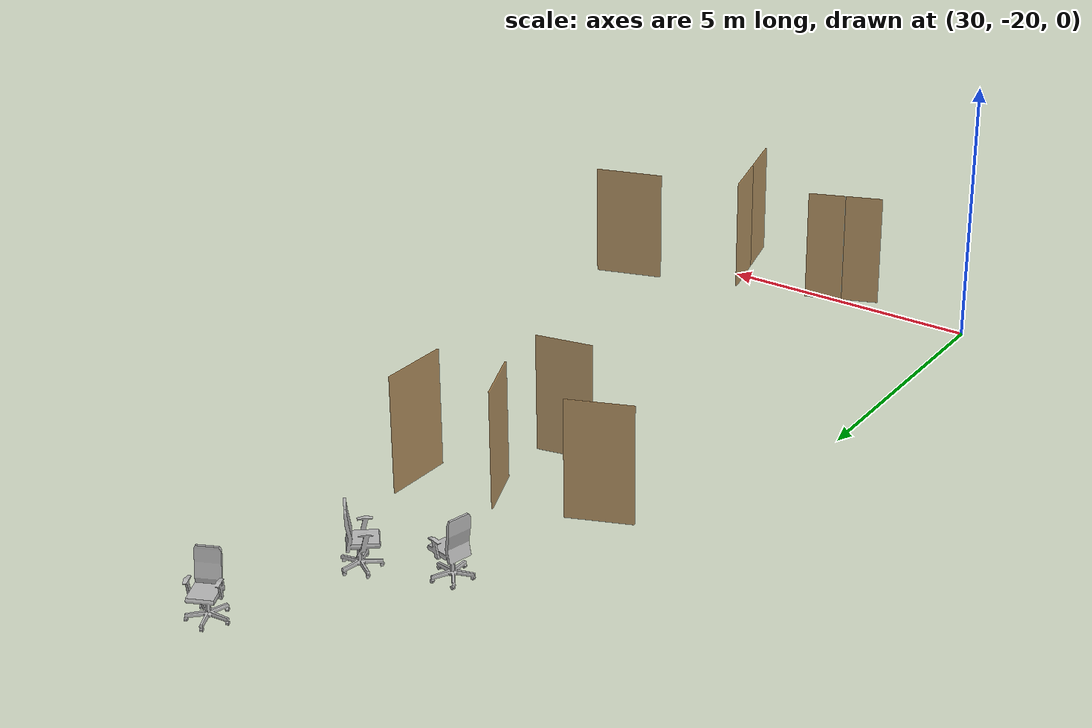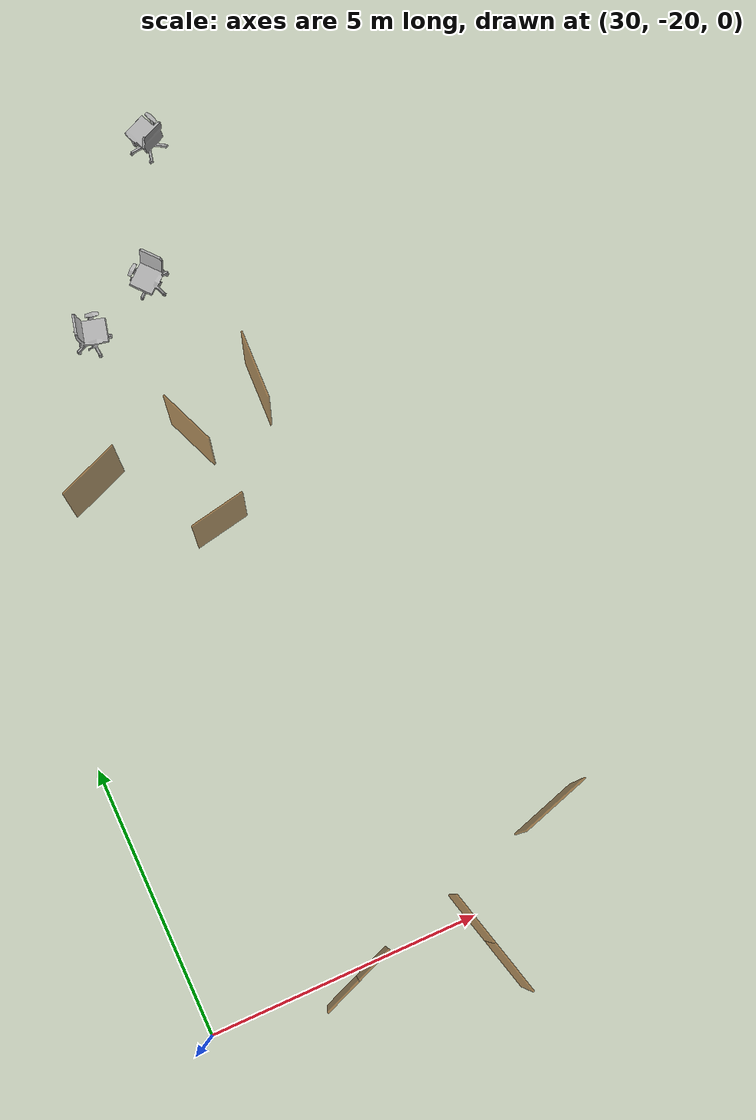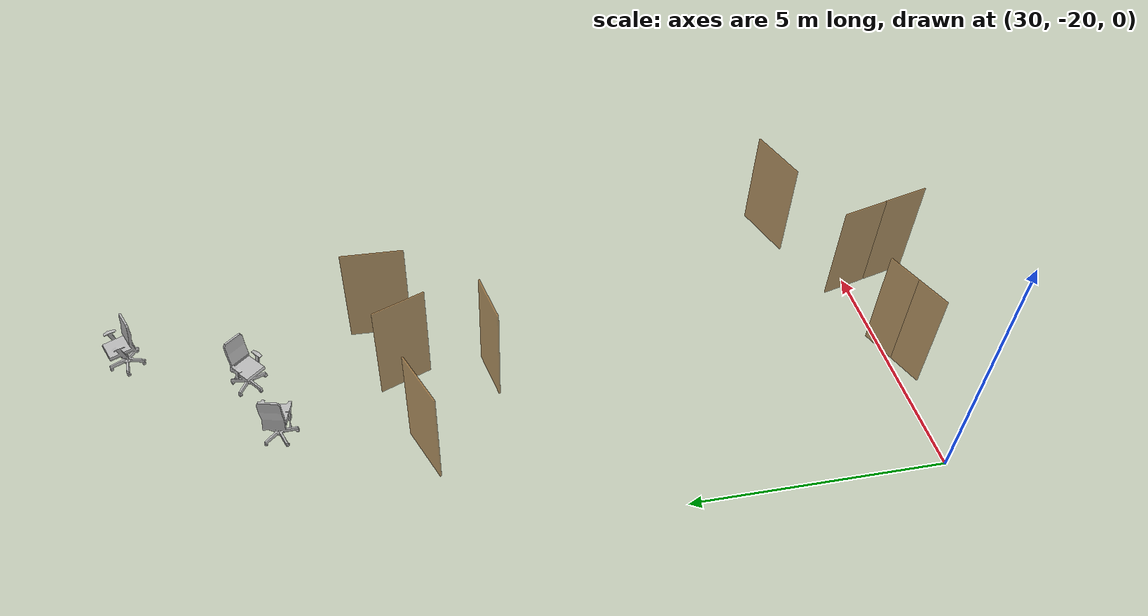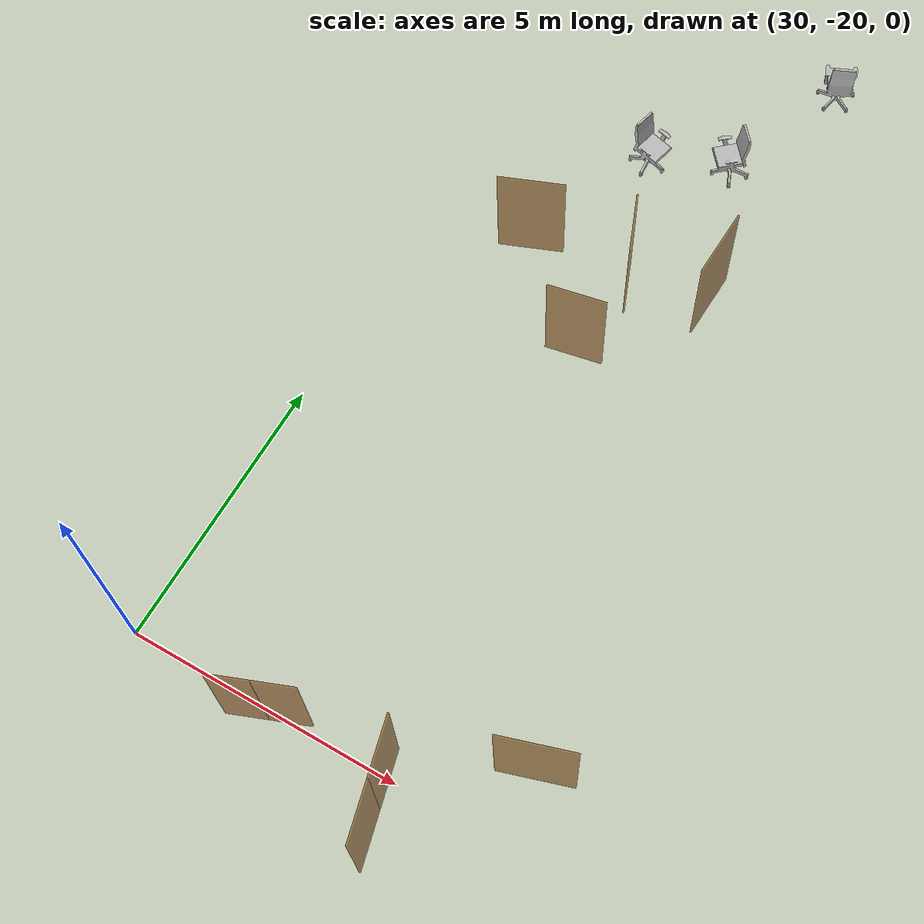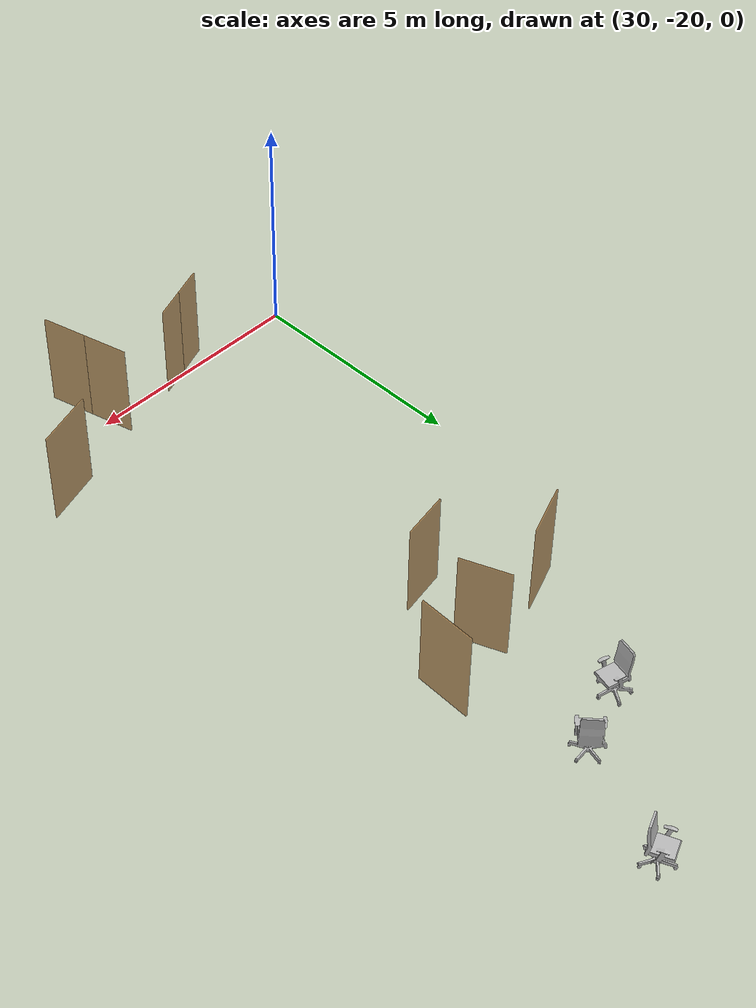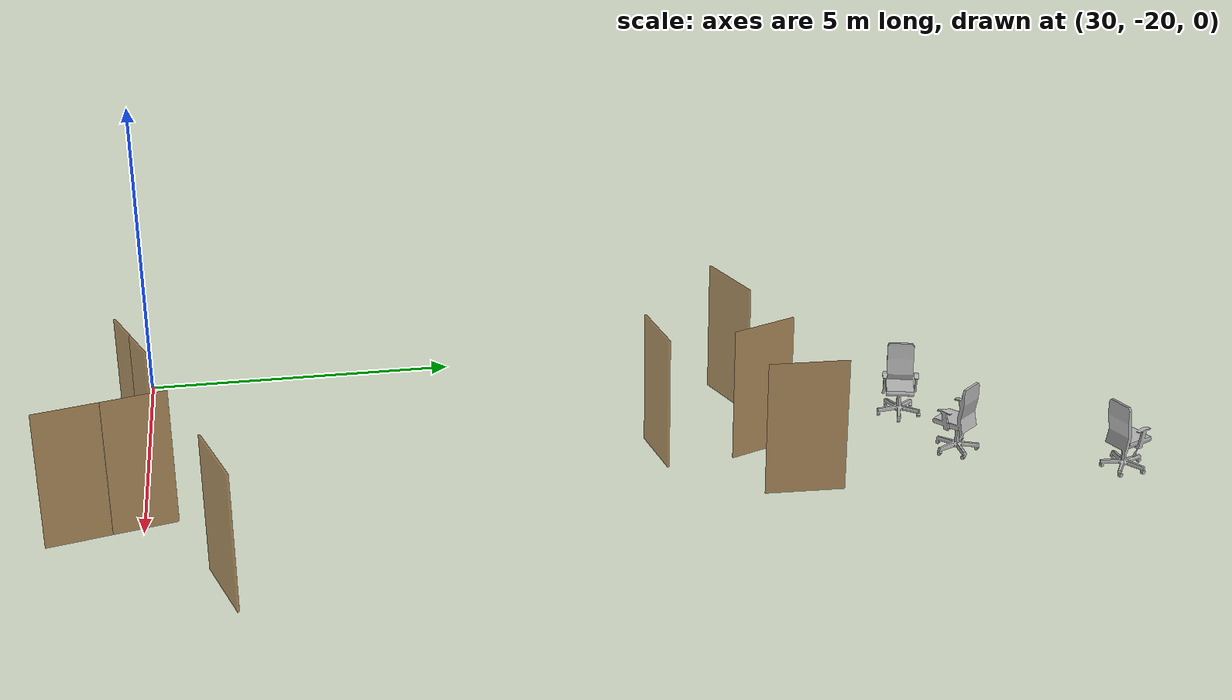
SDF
<sdf version="1.7">
 <world name="world">
  <include><uri>model://sun</uri></include>
  <include>
   <name>OpenRobotics/OfficeChairBlue_163</name>
   <uri>model://OfficeChairBlue</uri>
   <pose>33.094190447928035 -7.78042932097533 0.0 0 0 1.3253</pose>
   <static>True</static>
  </include>
  <include>
   <name>OpenRobotics/OfficeChairBlue_164</name>
   <uri>model://OfficeChairBlue</uri>
   <pose>34.279538029793486 -7.269600423694803 0.0 0 0 -0.8607</pose>
   <static>True</static>
  </include>
  <include>
   <name>OpenRobotics/OfficeChairBlue_166</name>
   <uri>model://OfficeChairBlue</uri>
   <pose>35.33195782827868 -4.64270492071244 0.0 0 0 -2.7269</pose>
   <static>True</static>
  </include>
  <model name="door_47">
   <pose>35.33066672227457 -9.91726589283033 0.0 0 0 -1.6078000247338706</pose>
   <link name="right">
    <pose>0 0 1.11 0 0 0</pose>
    <visual name="right_visual">
     <geometry><box><size>1.2554765565121222 0.03 2.2</size></box></geometry>
     <material><ambient>0.5 0.25 0 0.6</ambient><diffuse>0.5 0.25 0 0.6</diffuse></material>
    </visual>
    <collision name="right_collision">
     <geometry><box><size>1.2554765565121222 0.03 2.2</size></box></geometry>
     <surface><contact><collide_bitmask>0x02</collide_bitmask></contact></surface>
    </collision>
    <inertial>
     <mass>50.0</mass>
     <inertia><ixx>20.17041666666667</ixx><iyy>26.734255766464738</iyy><izz>6.571339099798067</izz></inertia>
    </inertial>
   </link>
   <joint name="right_joint" type="revolute">
    <parent>world</parent>
    <child>right</child>
    <axis><xyz>0 0 -1</xyz><limit><lower>0</lower><upper>1.57</upper></limit></axis>
    <pose>0.6327382782560611 0 0 0 0 0</pose>
   </joint>
   <plugin name="door" filename="libdoor.so">
    <v_max_door>0.5</v_max_door>
    <a_max_door>0.3</a_max_door>
    <a_nom_door>0.15</a_nom_door>
    <dx_min_door>0.01</dx_min_door>
    <f_max_door>500.0</f_max_door>
    <door name="door_47" type="SwingDoor" left_joint_name="empty_joint" right_joint_name="right_joint"/>
   </plugin>
  </model>
  <model name="door_48">
   <pose>33.883617566879245 -10.284501348435736 0.0 0 0 -1.1899322959066523</pose>
   <link name="right">
    <pose>0 0 1.11 0 0 0</pose>
    <visual name="right_visual">
     <geometry><box><size>1.09753091382642 0.03 2.2</size></box></geometry>
     <material><ambient>0.5 0.25 0 0.6</ambient><diffuse>0.5 0.25 0 0.6</diffuse></material>
    </visual>
    <collision name="right_collision">
     <geometry><box><size>1.09753091382642 0.03 2.2</size></box></geometry>
     <surface><contact><collide_bitmask>0x02</collide_bitmask></contact></surface>
    </collision>
    <inertial>
     <mass>50.0</mass>
     <inertia><ixx>20.17041666666667</ixx><iyy>25.185725445019408</iyy><izz>5.0228087783527355</izz></inertia>
    </inertial>
   </link>
   <joint name="right_joint" type="revolute">
    <parent>world</parent>
    <child>right</child>
    <axis><xyz>0 0 -1</xyz><limit><lower>0</lower><upper>1.57</upper></limit></axis>
    <pose>0.55376545691321 0 0 0 0 0</pose>
   </joint>
   <plugin name="door" filename="libdoor.so">
    <v_max_door>0.5</v_max_door>
    <a_max_door>0.3</a_max_door>
    <a_nom_door>0.15</a_nom_door>
    <dx_min_door>0.01</dx_min_door>
    <f_max_door>500.0</f_max_door>
    <door name="door_48" type="SwingDoor" left_joint_name="empty_joint" right_joint_name="right_joint"/>
   </plugin>
  </model>
  <model name="door_49">
   <pose>31.98619695622221 -10.441005850152013 0.0 0 0 -2.766966310306519</pose>
   <link name="right">
    <pose>0 0 1.11 0 0 0</pose>
    <visual name="right_visual">
     <geometry><box><size>1.188407282995471 0.03 2.2</size></box></geometry>
     <material><ambient>0.5 0.25 0 0.6</ambient><diffuse>0.5 0.25 0 0.6</diffuse></material>
    </visual>
    <collision name="right_collision">
     <geometry><box><size>1.188407282995471 0.03 2.2</size></box></geometry>
     <surface><contact><collide_bitmask>0x02</collide_bitmask></contact></surface>
    </collision>
    <inertial>
     <mass>50.0</mass>
     <inertia><ixx>20.17041666666667</ixx><iyy>26.05129945948616</iyy><izz>5.88838279281949</izz></inertia>
    </inertial>
   </link>
   <joint name="right_joint" type="revolute">
    <parent>world</parent>
    <child>right</child>
    <axis><xyz>0 0 -1</xyz><limit><lower>0</lower><upper>1.57</upper></limit></axis>
    <pose>0.5992036414977355 0 0 0 0 0</pose>
   </joint>
   <plugin name="door" filename="libdoor.so">
    <v_max_door>0.5</v_max_door>
    <a_max_door>0.3</a_max_door>
    <a_nom_door>0.15</a_nom_door>
    <dx_min_door>0.01</dx_min_door>
    <f_max_door>500.0</f_max_door>
    <door name="door_49" type="SwingDoor" left_joint_name="empty_joint" right_joint_name="right_joint"/>
   </plugin>
  </model>
  <model name="door_50">
   <pose>33.72088207531702 -11.967149282060326 0.0 0 0 -2.9530084478219636</pose>
   <link name="right">
    <pose>0 0 1.11 0 0 0</pose>
    <visual name="right_visual">
     <geometry><box><size>1.0470139524283748 0.03 2.2</size></box></geometry>
     <material><ambient>0.5 0.25 0 0.6</ambient><diffuse>0.5 0.25 0 0.6</diffuse></material>
    </visual>
    <collision name="right_collision">
     <geometry><box><size>1.0470139524283748 0.03 2.2</size></box></geometry>
     <surface><contact><collide_bitmask>0x02</collide_bitmask></contact></surface>
    </collision>
    <inertial>
     <mass>50.0</mass>
     <inertia><ixx>20.17041666666667</ixx><iyy>24.734325902415367</iyy><izz>4.571409235748696</izz></inertia>
    </inertial>
   </link>
   <joint name="right_joint" type="revolute">
    <parent>world</parent>
    <child>right</child>
    <axis><xyz>0 0 -1</xyz><limit><lower>0</lower><upper>1.57</upper></limit></axis>
    <pose>0.5285069762141874 0 0 0 0 0</pose>
   </joint>
   <plugin name="door" filename="libdoor.so">
    <v_max_door>0.5</v_max_door>
    <a_max_door>0.3</a_max_door>
    <a_nom_door>0.15</a_nom_door>
    <dx_min_door>0.01</dx_min_door>
    <f_max_door>500.0</f_max_door>
    <door name="door_50" type="SwingDoor" left_joint_name="empty_joint" right_joint_name="right_joint"/>
   </plugin>
  </model>
  <model name="double_hinged_11">
   <pose>32.68418008905584 -20.106056991830542 0.0 0 0 -2.7734887636237424</pose>
   <link name="right">
    <pose>0.36183499708953276 0 1.11 0 0 0</pose>
    <visual name="right_visual">
     <geometry><box><size>0.7136699941790655 0.03 2.2</size></box></geometry>
     <material><ambient>0.5 0.25 0 0.6</ambient><diffuse>0.5 0.25 0 0.6</diffuse></material>
    </visual>
    <collision name="right_collision">
     <geometry><box><size>0.7136699941790655 0.03 2.2</size></box></geometry>
     <surface><contact><collide_bitmask>0x02</collide_bitmask></contact></surface>
    </collision>
    <inertial>
     <mass>50.0</mass>
     <inertia><ixx>20.17041666666667</ixx><iyy>22.28885358579812</iyy><izz>2.1259369191314477</izz></inertia>
    </inertial>
   </link>
   <joint name="right_joint" type="revolute">
    <parent>world</parent>
    <child>right</child>
    <axis><xyz>0 0 -1</xyz><limit><lower>0</lower><upper>1.57</upper></limit></axis>
    <pose>0.36183499708953276 0 0 0 0 0</pose>
   </joint>
   <link name="left">
    <pose>-0.36183499708953276 0 1.11 0 0 0</pose>
    <visual name="left_visual">
     <geometry><box><size>0.7136699941790655 0.03 2.2</size></box></geometry>
     <material><ambient>0.5 0.25 0 0.6</ambient><diffuse>0.5 0.25 0 0.6</diffuse></material>
    </visual>
    <collision name="left_collision">
     <geometry><box><size>0.7136699941790655 0.03 2.2</size></box></geometry>
     <surface><contact><collide_bitmask>0x02</collide_bitmask></contact></surface>
    </collision>
    <inertial>
     <mass>50.0</mass>
     <inertia><ixx>20.17041666666667</ixx><iyy>22.28885358579812</iyy><izz>2.1259369191314477</izz></inertia>
    </inertial>
   </link>
   <joint name="left_joint" type="revolute">
    <parent>world</parent>
    <child>left</child>
    <axis><xyz>0 0 -1</xyz><limit><lower>-1.57</lower><upper>0</upper></limit></axis>
    <pose>-0.36183499708953276 0 0 0 0 0</pose>
   </joint>
   <plugin name="door" filename="libdoor.so">
    <v_max_door>0.5</v_max_door>
    <a_max_door>0.3</a_max_door>
    <a_nom_door>0.15</a_nom_door>
    <dx_min_door>0.01</dx_min_door>
    <f_max_door>500.0</f_max_door>
    <door name="double_hinged_11" type="DoubleSwingDoor" left_joint_name="left_joint" right_joint_name="right_joint"/>
   </plugin>
  </model>
  <model name="double_hinged_13">
   <pose>34.97684754210323 -20.46021298226382 0.0 0 0 1.8225818322006664</pose>
   <link name="right">
    <pose>0.5040432588987442 0 1.11 0 0 0</pose>
    <visual name="right_visual">
     <geometry><box><size>0.9980865177974885 0.03 2.2</size></box></geometry>
     <material><ambient>0.5 0.25 0 0.6</ambient><diffuse>0.5 0.25 0 0.6</diffuse></material>
    </visual>
    <collision name="right_collision">
     <geometry><box><size>0.9980865177974885 0.03 2.2</size></box></geometry>
     <surface><contact><collide_bitmask>0x02</collide_bitmask></contact></surface>
    </collision>
    <inertial>
     <mass>50.0</mass>
     <inertia><ixx>20.17041666666667</ixx><iyy>24.317402904204656</iyy><izz>4.154486237537985</izz></inertia>
    </inertial>
   </link>
   <joint name="right_joint" type="revolute">
    <parent>world</parent>
    <child>right</child>
    <axis><xyz>0 0 -1</xyz><limit><lower>0</lower><upper>1.57</upper></limit></axis>
    <pose>0.5040432588987442 0 0 0 0 0</pose>
   </joint>
   <link name="left">
    <pose>-0.5040432588987442 0 1.11 0 0 0</pose>
    <visual name="left_visual">
     <geometry><box><size>0.9980865177974885 0.03 2.2</size></box></geometry>
     <material><ambient>0.5 0.25 0 0.6</ambient><diffuse>0.5 0.25 0 0.6</diffuse></material>
    </visual>
    <collision name="left_collision">
     <geometry><box><size>0.9980865177974885 0.03 2.2</size></box></geometry>
     <surface><contact><collide_bitmask>0x02</collide_bitmask></contact></surface>
    </collision>
    <inertial>
     <mass>50.0</mass>
     <inertia><ixx>20.17041666666667</ixx><iyy>24.317402904204656</iyy><izz>4.154486237537985</izz></inertia>
    </inertial>
   </link>
   <joint name="left_joint" type="revolute">
    <parent>world</parent>
    <child>left</child>
    <axis><xyz>0 0 -1</xyz><limit><lower>-1.57</lower><upper>0</upper></limit></axis>
    <pose>-0.5040432588987442 0 0 0 0 0</pose>
   </joint>
   <plugin name="door" filename="libdoor.so">
    <v_max_door>0.5</v_max_door>
    <a_max_door>0.3</a_max_door>
    <a_nom_door>0.15</a_nom_door>
    <dx_min_door>0.01</dx_min_door>
    <f_max_door>500.0</f_max_door>
    <door name="double_hinged_13" type="DoubleSwingDoor" left_joint_name="left_joint" right_joint_name="right_joint"/>
   </plugin>
  </model>
  <model name="door_61">
   <pose>36.855126102873164 -18.817196389461213 0.0 0 0 -2.838707785214822</pose>
   <link name="right">
    <pose>0 0 1.11 0 0 0</pose>
    <visual name="right_visual">
     <geometry><box><size>1.320566650874158 0.03 2.2</size></box></geometry>
     <material><ambient>0.5 0.25 0 0.6</ambient><diffuse>0.5 0.25 0 0.6</diffuse></material>
    </visual>
    <collision name="right_collision">
     <geometry><box><size>1.320566650874158 0.03 2.2</size></box></geometry>
     <surface><contact><collide_bitmask>0x02</collide_bitmask></contact></surface>
    </collision>
    <inertial>
     <mass>50.0</mass>
     <inertia><ixx>20.17041666666667</ixx><iyy>27.4329011641708</iyy><izz>7.269984497504127</izz></inertia>
    </inertial>
   </link>
   <joint name="right_joint" type="revolute">
    <parent>world</parent>
    <child>right</child>
    <axis><xyz>0 0 -1</xyz><limit><lower>0</lower><upper>1.57</upper></limit></axis>
    <pose>0.665283325437079 0 0 0 0 0</pose>
   </joint>
   <plugin name="door" filename="libdoor.so">
    <v_max_door>0.5</v_max_door>
    <a_max_door>0.3</a_max_door>
    <a_nom_door>0.15</a_nom_door>
    <dx_min_door>0.01</dx_min_door>
    <f_max_door>500.0</f_max_door>
    <door name="door_61" type="SwingDoor" left_joint_name="empty_joint" right_joint_name="right_joint"/>
   </plugin>
  </model>
 </world>
</sdf>
